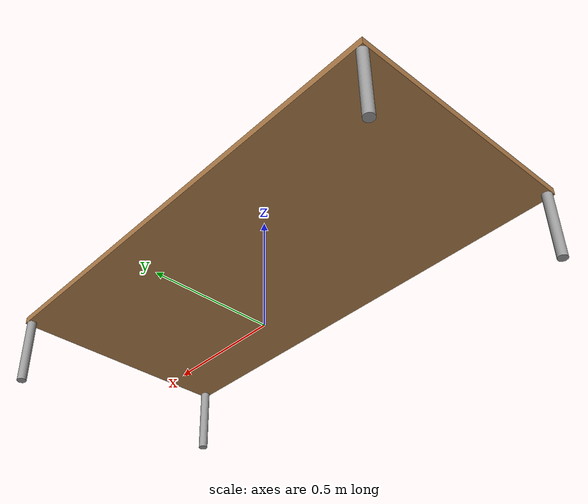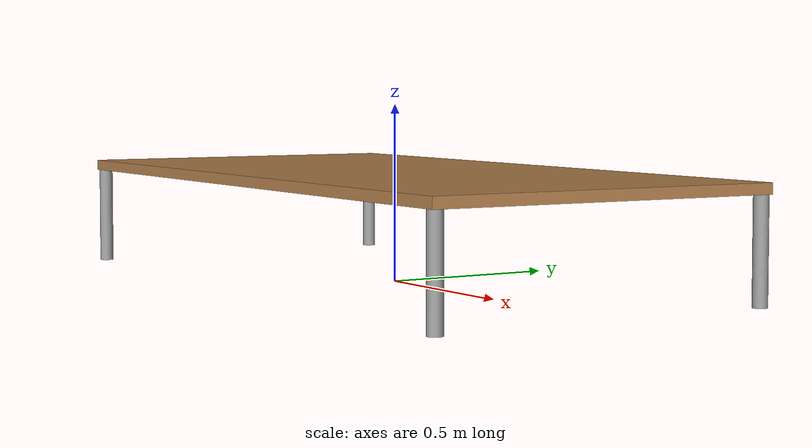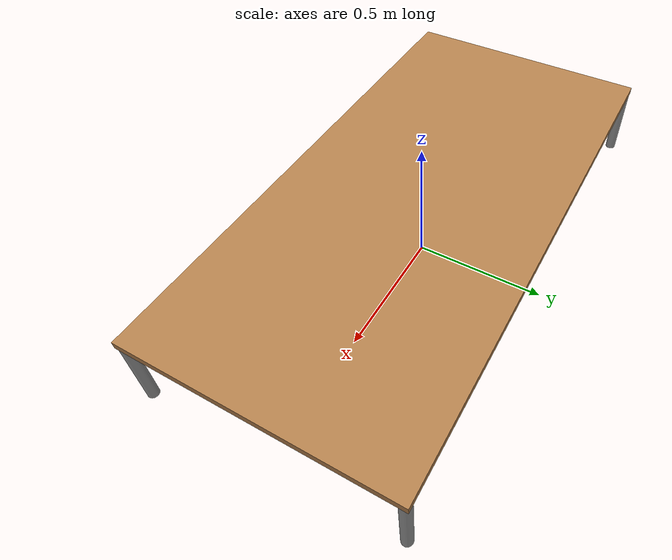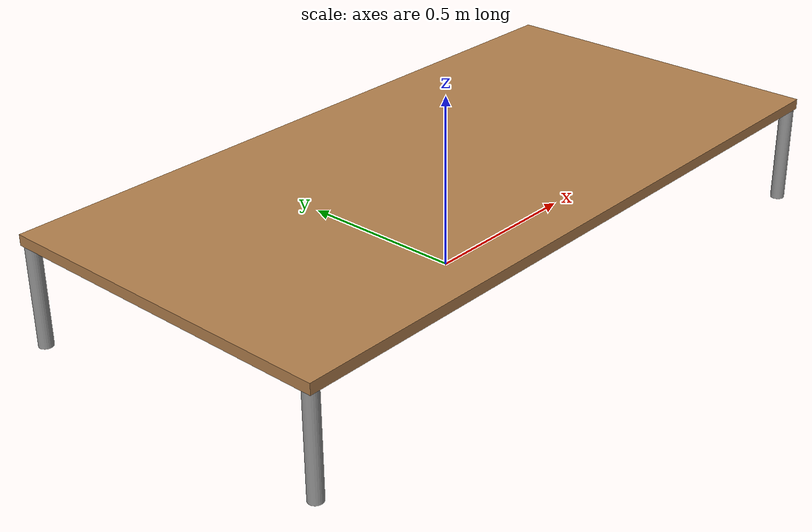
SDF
<?xml version="1.0" ?>
<sdf version="1.4">
  <model name="bed">
    <static>true</static>
    <link name="link">
      <collision name="surface">
        <pose>0 0 0.3 0 0 0</pose>
        <geometry>
          <box>
            <size>2.0 1.0 0.03</size>
          </box>
        </geometry>
        <surface>
          <friction>
            <ode>
              <mu>0.6</mu>
              <mu2>0.6</mu2>
            </ode>
          </friction>
        </surface>
      </collision>
      <visual name="visual1">
        <pose>0 0 0.3 0 0 0</pose>
        <geometry>
          <box>
            <size>2.0 1.0 0.03</size>
          </box>
        </geometry>
        <material>
          <script>
            <uri>file://media/materials/scripts/gazebo.material</uri>
            <name>Gazebo/Wood</name>
          </script>
        </material>
      </visual>
      <collision name="front_left_leg">
        <pose>0.98 0.48 0.15 0 0 0</pose>
        <geometry>
          <cylinder>
            <radius>0.02</radius>
            <length>0.3</length>
          </cylinder>
        </geometry>
      </collision>
      <visual name="front_left_leg">
        <pose>0.98 0.48 0.15 0 0 0</pose>
        <geometry>
          <cylinder>
            <radius>0.02</radius>
            <length>0.3</length>
          </cylinder>
        </geometry>
        <material>
          <script>
            <uri>file://media/materials/scripts/gazebo.material</uri>
            <name>Gazebo/Grey</name>
          </script>
        </material>
      </visual>
      <collision name="front_right_leg">
        <pose>0.98 -0.48 0.15 0 0 0</pose>
        <geometry>
          <cylinder>
            <radius>0.02</radius>
            <length>0.3</length>
          </cylinder>
        </geometry>
      </collision>
      <visual name="front_right_leg">
        <pose>0.98 -0.48 0.15 0 0 0</pose>
        <geometry>
          <cylinder>
            <radius>0.02</radius>
            <length>0.3</length>
          </cylinder>
        </geometry>
        <material>
          <script>
            <uri>file://media/materials/scripts/gazebo.material</uri>
            <name>Gazebo/Grey</name>
          </script>
        </material>
      </visual>
      <collision name="back_right_leg">
        <pose>-0.98 -0.48 0.15 0 0 0</pose>
        <geometry>
          <cylinder>
            <radius>0.02</radius>
            <length>0.3</length>
          </cylinder>
        </geometry>
      </collision>
      <visual name="back_right_leg">
        <pose>-0.98 -0.48 0.15 0 0 0</pose>
        <geometry>
          <cylinder>
            <radius>0.02</radius>
            <length>0.3</length>
          </cylinder>
        </geometry>
        <material>
          <script>
            <uri>file://media/materials/scripts/gazebo.material</uri>
            <name>Gazebo/Grey</name>
          </script>
        </material>
      </visual>
      <collision name="back_left_leg">
        <pose>-0.98 0.48 0.15 0 0 0</pose>
        <geometry>
          <cylinder>
            <radius>0.02</radius>
            <length>0.3</length>
          </cylinder>
        </geometry>
      </collision>
      <visual name="back_left_leg">
        <pose>-0.98 0.48 0.15 0 0 0</pose>
        <geometry>
          <cylinder>
            <radius>0.02</radius>
            <length>0.3</length>
          </cylinder>
        </geometry>
        <material>
          <script>
            <uri>file://media/materials/scripts/gazebo.material</uri>
            <name>Gazebo/Grey</name>
          </script>
        </material>
      </visual>
    </link>
  </model>
</sdf>
